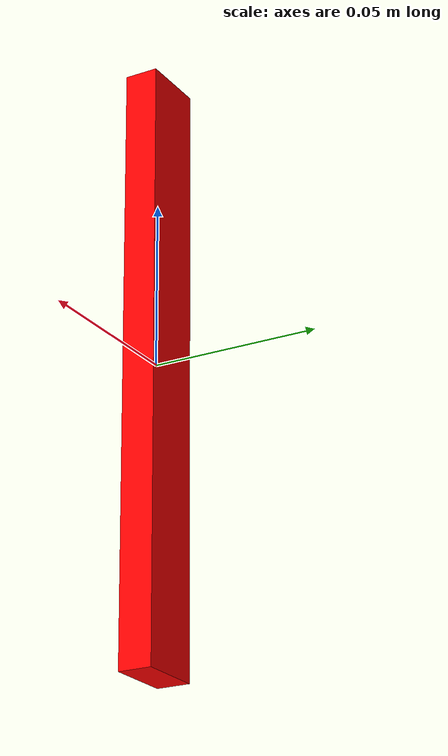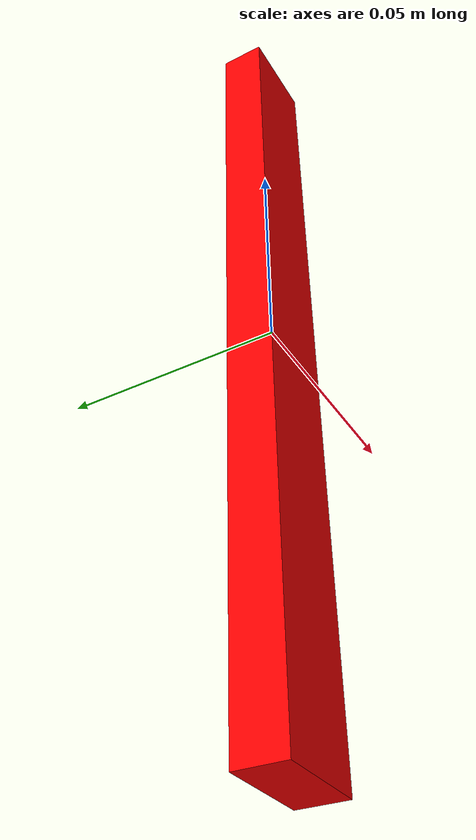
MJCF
<mujoco model="sand_tool">
  <worldbody>
    <body>
      <body name="object">
        <geom name="sand_tool_geom" type="box" pos="0. 0 0" group="0" size="0.01 0.005 0.09" rgba="1.0 0 0 1" />
      </body>
      <site rgba="0 0 0 0" size="0.005" pos="0 0 -0.05" name="bottom_site"/>
      <site rgba="0 0 0 0" size="0.005" pos="0 0 0.05" name="top_site"/>
      <site rgba="0 0 0 0" size="0.005" pos="0 0 0.1" name="horizontal_radius_site"/>
    </body>
  </worldbody>
</mujoco>
